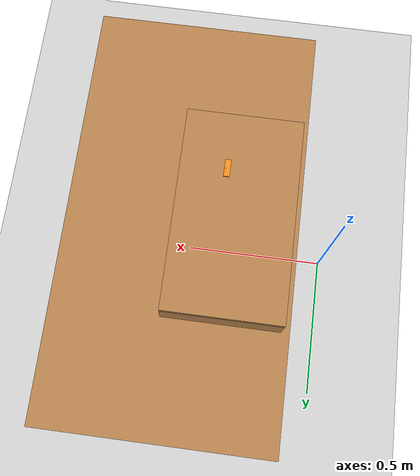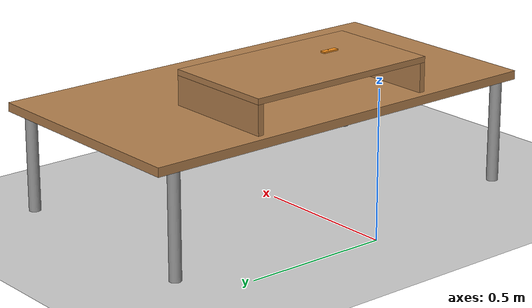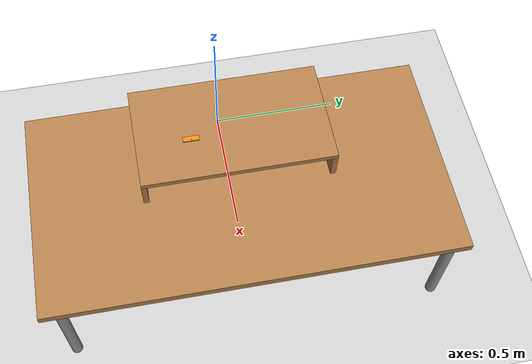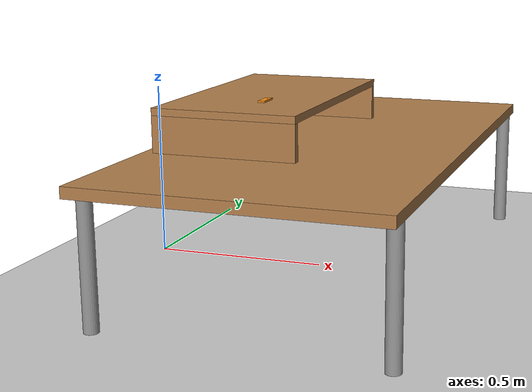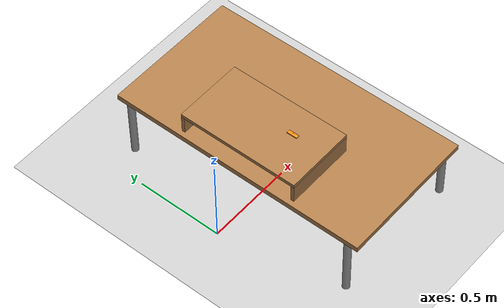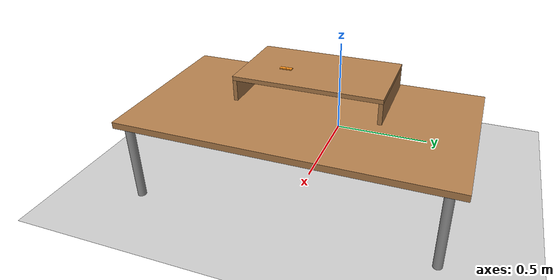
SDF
<sdf version="1.5">
 <world name="default">
  <include><uri>model://sun</uri></include>
  <include><uri>model://ground_plane</uri></include>
  <include><uri>model://he_table</uri><pose>0.530772 0 0 0 0 -1.57</pose></include>
  <include><uri>model://he_shelf</uri><pose>0.359608 0 0.38 0 0 -1.57</pose></include>
  <model name="to_be_followed">
   <include><uri>model://br_A</uri><pose>0.4 -0.15 0.5 1.57 0.0 -3.14</pose></include>
   <joint name="tbf_fixed_joint" type="fixed">
    <parent>world</parent>
    <child>to_be_followed::A::A_root_link</child>
   </joint>
  </model>
 </world>
</sdf>

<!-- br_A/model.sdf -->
<sdf version="1.5">
  <model name='A'>
    <link name='A_root_link'>
      <pose>0 0 0 0 0 0</pose>
      <inertial>
	<!-- CoM -->
	<pose>0.0 0.0 0.0</pose>
        <mass>0.2</mass>
        <inertia>
          <ixx>1.812455</ixx>
          <ixy>0.0</ixy>
          <ixz>0.0</ixz>
          <iyy>1.999853</iyy>
          <iyz>0.0</iyz>
          <izz>0.212400</izz>
        </inertia>
      </inertial>
      <collision name='A_collision'>
        <geometry>
          <mesh><uri>model://br_A/A.stl</uri></mesh>
        </geometry>
	<surface>
          <friction>
            <ode>
              <mu>0.1</mu>
              <mu2>0.1</mu2>
            </ode>
          </friction>
	</surface>
      </collision>
      <visual name='A_visual'>
        <geometry>
          <mesh><uri>model://br_A/A.dae</uri></mesh>
        </geometry>
        <material>
	  <script>
	    <uri>file://media/materials/scripts/gazebo.material</uri>
	    <name>Gazebo/Orange</name>
	  </script>
        </material>
      </visual>
    </link>
  </model>
</sdf>

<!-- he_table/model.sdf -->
<sdf version="1.5">
  <model name="he_table">
    <static>true</static>
    <link name="he_table_root_link">
      <collision name="he_table_surface_collision">
	<pose>0 0 0.365 0 0 0</pose>
	<geometry>
          <box>
            <size>1.5 0.8 0.03</size>
          </box>
	</geometry>
	<surface>
          <friction>
            <ode>
              <mu>0.1</mu>
              <mu2>0.1</mu2>
            </ode>
          </friction>
	</surface>
      </collision>
      <visual name="he_table_surface_visual">
	<pose>0 0 0.365 0 0 0</pose>
	<geometry>
          <box>
            <size>1.5 0.8 0.03</size>
          </box>
	</geometry>
	<material>
          <script>
            <uri>file://media/materials/scripts/gazebo.material</uri>
            <name>Gazebo/Wood</name>
          </script>
	</material>
      </visual>
      <collision name="front_left_leg">
        <pose>0.68 0.38 0.175 0 0 0</pose>
        <geometry>
          <cylinder>
            <radius>0.02</radius>
            <length>0.35</length>
          </cylinder>
        </geometry>
      </collision>
      <visual name="front_left_leg">
        <pose>0.68 0.38 0.175 0 0 0</pose>
        <geometry>
          <cylinder>
            <radius>0.02</radius>
            <length>0.35</length>
          </cylinder>
        </geometry>
        <material>
          <script>
            <uri>file://media/materials/scripts/gazebo.material</uri>
            <name>Gazebo/Grey</name>
          </script>
        </material>
      </visual>
      <collision name="front_right_leg">
        <pose>0.68 -0.38 0.175 0 0 0</pose>
        <geometry>
          <cylinder>
            <radius>0.02</radius>
            <length>0.35</length>
          </cylinder>
        </geometry>
      </collision>
      <visual name="front_right_leg">
        <pose>0.68 -0.38 0.175 0 0 0</pose>
        <geometry>
          <cylinder>
            <radius>0.02</radius>
            <length>0.35</length>
          </cylinder>
        </geometry>
        <material>
          <script>
            <uri>file://media/materials/scripts/gazebo.material</uri>
            <name>Gazebo/Grey</name>
          </script>
        </material>
      </visual>
      <collision name="back_right_leg">
        <pose>-0.68 -0.38 0.175 0 0 0</pose>
        <geometry>
          <cylinder>
            <radius>0.02</radius>
            <length>0.35</length>
          </cylinder>
        </geometry>
      </collision>
      <visual name="back_right_leg">
        <pose>-0.68 -0.38 0.175 0 0 0</pose>
        <geometry>
          <cylinder>
            <radius>0.02</radius>
            <length>0.35</length>
          </cylinder>
        </geometry>
        <material>
          <script>
            <uri>file://media/materials/scripts/gazebo.material</uri>
            <name>Gazebo/Grey</name>
          </script>
        </material>
      </visual>
      <collision name="back_left_leg">
        <pose>-0.68 0.38 0.175 0 0 0</pose>
        <geometry>
          <cylinder>
            <radius>0.02</radius>
            <length>0.35</length>
          </cylinder>
        </geometry>
      </collision>
      <visual name="back_left_leg">
        <pose>-0.68 0.38 0.175 0 0 0</pose>
        <geometry>
          <cylinder>
            <radius>0.02</radius>
            <length>0.35</length>
          </cylinder>
        </geometry>
        <material>
          <script>
            <uri>file://media/materials/scripts/gazebo.material</uri>
            <name>Gazebo/Grey</name>
          </script>
        </material>
      </visual>
    </link>
  </model>
</sdf>

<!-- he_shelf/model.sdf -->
<sdf version="1.5">
  <model name="he_shelf">
    <static>true</static>
    <link name="he_shelf_root_link">
      <collision name="he_shelf_surface_collision">
	<pose>0 0 0.11 0 0 0</pose>
	<geometry>
          <box>
            <size>0.7 0.4 0.02</size>
          </box>
	</geometry>
	<surface>
          <friction>
            <ode>
              <mu>0.4</mu>
              <mu2>0.4</mu2>
            </ode>
          </friction>
	</surface>
      </collision>
      <visual name="vhe_shelf_surface_visual">
	<pose>0 0 0.11 0 0 0</pose>
	<geometry>
          <box>
            <size>0.7 0.4 0.02</size>
          </box>
	</geometry>
	<material>
          <script>
            <uri>file://media/materials/scripts/gazebo.material</uri>
            <name>Gazebo/Wood</name>
          </script>
	</material>
      </visual>
      <visual name="left_support_visual">
	<pose>-0.33999999999999997 0.0 0.05 0 0 0</pose>
	<geometry>
          <box>
            <size>0.02 0.4 0.1</size>
          </box>
	</geometry>
	<material>
          <script>
            <uri>file://media/materials/scripts/gazebo.material</uri>
            <name>Gazebo/Wood</name>
          </script>
	</material>
      </visual>
      <visual name="right_support_visual">
	<pose>0.33999999999999997 0.0 0.05 0 0 0</pose>
	<geometry>
          <box>
            <size>0.02 0.4 0.1</size>
          </box>
	</geometry>
	<material>
          <script>
            <uri>file://media/materials/scripts/gazebo.material</uri>
            <name>Gazebo/Wood</name>
          </script>
	</material>
      </visual>
    </link>
  </model>
</sdf>
